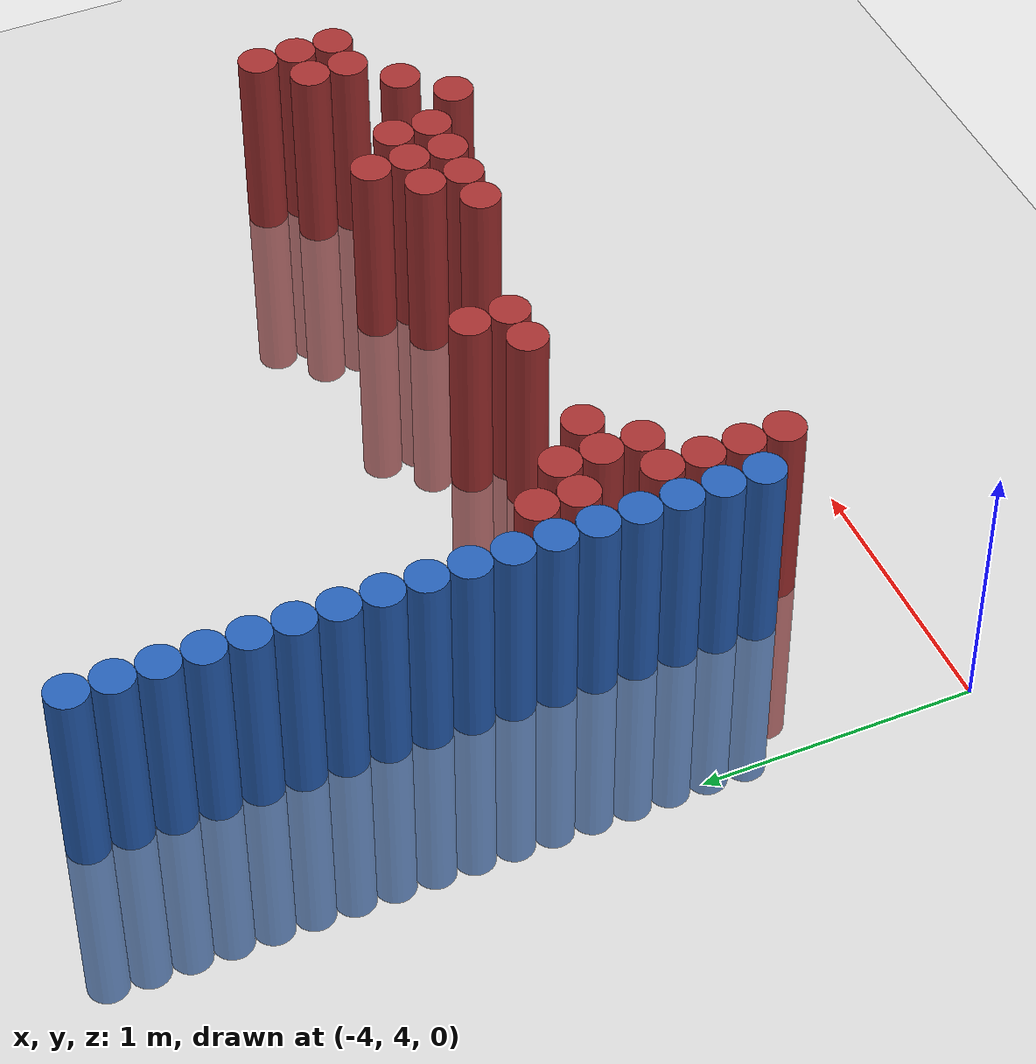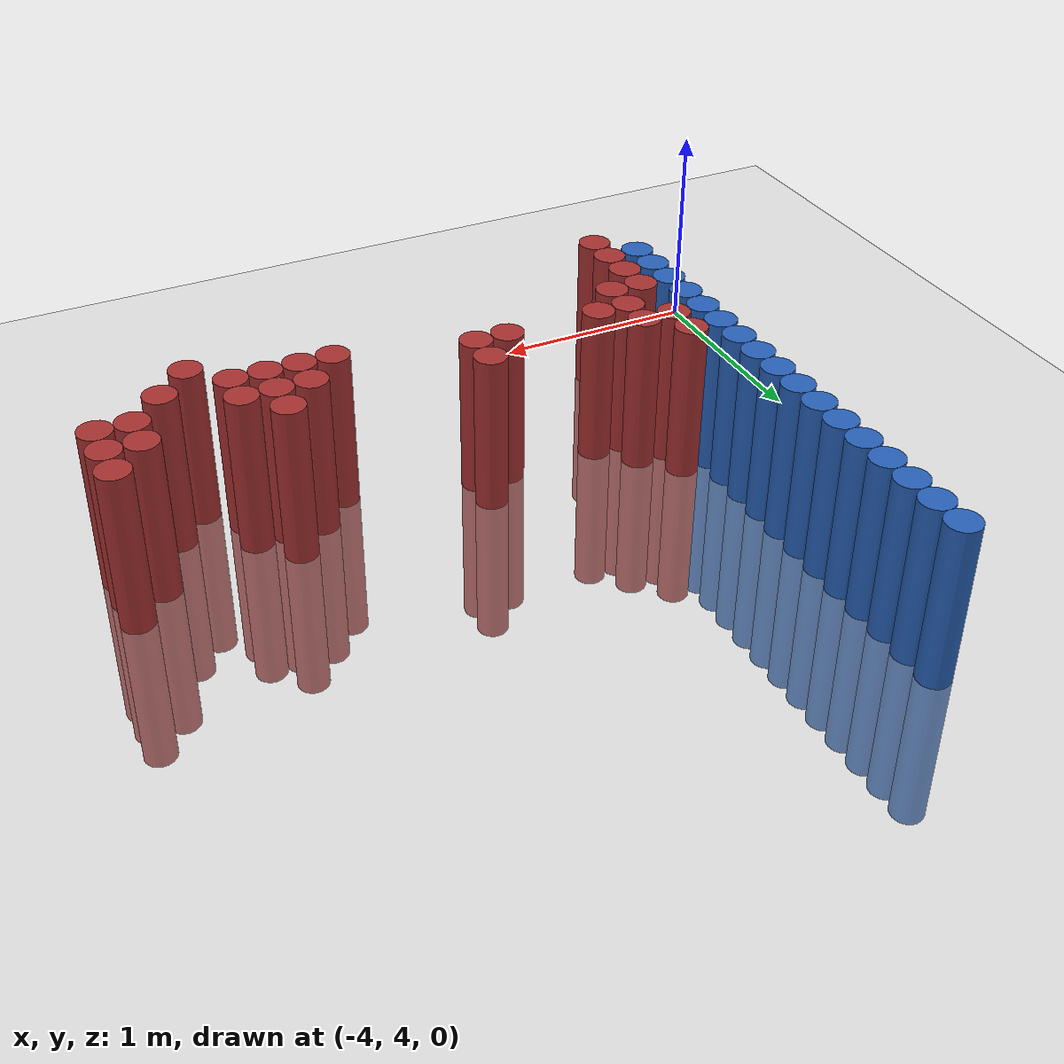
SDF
<sdf version="1.6">
 <world name="default">
  <model name="ground_plane">
   <static>1</static>
   <link name="link">
    <collision name="collision">
     <geometry><plane><normal>0 0 1</normal><size>100 100</size></plane></geometry>
     <surface><friction><ode><mu>100</mu><mu2>50</mu2></ode></friction></surface>
    </collision>
    <visual name="visual">
     <cast_shadows>0</cast_shadows>
     <geometry><plane><normal>0 0 1</normal><size>100 100</size></plane></geometry>
     <material>
      <script><uri>file://media/materials/scripts/gazebo.material</uri><name>Gazebo/Grey</name></script>
     </material>
    </visual>
   </link>
  </model>
  <model name="unit_cylinder_175">
   <static>1</static>
   <pose>-3.425000 4.525000 0.000000 0.000000 0.000000 0.000000</pose>
   <link name="link">
    <inertial>
     <mass>1</mass>
     <inertia><ixx>0.145833</ixx><ixy>0</ixy><ixz>0</ixz><iyy>0.145833</iyy><iyz>0</iyz><izz>0.125</izz></inertia>
    </inertial>
    <collision name="collision">
     <geometry><cylinder><radius>0.075000</radius><length>1.5</length></cylinder></geometry>
    </collision>
    <visual name="visual">
     <geometry><cylinder><radius>0.075000</radius><length>1.5</length></cylinder></geometry>
     <material>
      <ambient>0.152000 0.379000 0.720000 1</ambient>
      <diffuse>0.152000 0.379000 0.720000 1</diffuse>
     </material>
     <material>
      <script><name>Gazebo/Grey</name><uri>file://media/materials/scripts/gazebo.material</uri></script>
     </material>
    </visual>
   </link>
  </model>
  <model name="unit_cylinder_177">
   <static>1</static>
   <pose>-3.425000 4.675000 0.000000 0.000000 0.000000 0.000000</pose>
   <link name="link">
    <inertial>
     <mass>1</mass>
     <inertia><ixx>0.145833</ixx><ixy>0</ixy><ixz>0</ixz><iyy>0.145833</iyy><iyz>0</iyz><izz>0.125</izz></inertia>
    </inertial>
    <collision name="collision">
     <geometry><cylinder><radius>0.075000</radius><length>1.5</length></cylinder></geometry>
    </collision>
    <visual name="visual">
     <geometry><cylinder><radius>0.075000</radius><length>1.5</length></cylinder></geometry>
     <material>
      <ambient>0.152000 0.379000 0.720000 1</ambient>
      <diffuse>0.152000 0.379000 0.720000 1</diffuse>
     </material>
     <material>
      <script><name>Gazebo/Grey</name><uri>file://media/materials/scripts/gazebo.material</uri></script>
     </material>
    </visual>
   </link>
  </model>
  <model name="unit_cylinder_179">
   <static>1</static>
   <pose>-3.425000 4.825000 0.000000 0.000000 0.000000 0.000000</pose>
   <link name="link">
    <inertial>
     <mass>1</mass>
     <inertia><ixx>0.145833</ixx><ixy>0</ixy><ixz>0</ixz><iyy>0.145833</iyy><iyz>0</iyz><izz>0.125</izz></inertia>
    </inertial>
    <collision name="collision">
     <geometry><cylinder><radius>0.075000</radius><length>1.5</length></cylinder></geometry>
    </collision>
    <visual name="visual">
     <geometry><cylinder><radius>0.075000</radius><length>1.5</length></cylinder></geometry>
     <material>
      <ambient>0.152000 0.379000 0.720000 1</ambient>
      <diffuse>0.152000 0.379000 0.720000 1</diffuse>
     </material>
     <material>
      <script><name>Gazebo/Grey</name><uri>file://media/materials/scripts/gazebo.material</uri></script>
     </material>
    </visual>
   </link>
  </model>
  <model name="unit_cylinder_181">
   <static>1</static>
   <pose>-3.425000 4.975000 0.000000 0.000000 0.000000 0.000000</pose>
   <link name="link">
    <inertial>
     <mass>1</mass>
     <inertia><ixx>0.145833</ixx><ixy>0</ixy><ixz>0</ixz><iyy>0.145833</iyy><iyz>0</iyz><izz>0.125</izz></inertia>
    </inertial>
    <collision name="collision">
     <geometry><cylinder><radius>0.075000</radius><length>1.5</length></cylinder></geometry>
    </collision>
    <visual name="visual">
     <geometry><cylinder><radius>0.075000</radius><length>1.5</length></cylinder></geometry>
     <material>
      <ambient>0.152000 0.379000 0.720000 1</ambient>
      <diffuse>0.152000 0.379000 0.720000 1</diffuse>
     </material>
     <material>
      <script><name>Gazebo/Grey</name><uri>file://media/materials/scripts/gazebo.material</uri></script>
     </material>
    </visual>
   </link>
  </model>
  <model name="unit_cylinder_183">
   <static>1</static>
   <pose>-3.425000 5.125000 0.000000 0.000000 0.000000 0.000000</pose>
   <link name="link">
    <inertial>
     <mass>1</mass>
     <inertia><ixx>0.145833</ixx><ixy>0</ixy><ixz>0</ixz><iyy>0.145833</iyy><iyz>0</iyz><izz>0.125</izz></inertia>
    </inertial>
    <collision name="collision">
     <geometry><cylinder><radius>0.075000</radius><length>1.5</length></cylinder></geometry>
    </collision>
    <visual name="visual">
     <geometry><cylinder><radius>0.075000</radius><length>1.5</length></cylinder></geometry>
     <material>
      <ambient>0.152000 0.379000 0.720000 1</ambient>
      <diffuse>0.152000 0.379000 0.720000 1</diffuse>
     </material>
     <material>
      <script><name>Gazebo/Grey</name><uri>file://media/materials/scripts/gazebo.material</uri></script>
     </material>
    </visual>
   </link>
  </model>
  <model name="unit_cylinder_185">
   <static>1</static>
   <pose>-3.425000 5.275000 0.000000 0.000000 0.000000 0.000000</pose>
   <link name="link">
    <inertial>
     <mass>1</mass>
     <inertia><ixx>0.145833</ixx><ixy>0</ixy><ixz>0</ixz><iyy>0.145833</iyy><iyz>0</iyz><izz>0.125</izz></inertia>
    </inertial>
    <collision name="collision">
     <geometry><cylinder><radius>0.075000</radius><length>1.5</length></cylinder></geometry>
    </collision>
    <visual name="visual">
     <geometry><cylinder><radius>0.075000</radius><length>1.5</length></cylinder></geometry>
     <material>
      <ambient>0.152000 0.379000 0.720000 1</ambient>
      <diffuse>0.152000 0.379000 0.720000 1</diffuse>
     </material>
     <material>
      <script><name>Gazebo/Grey</name><uri>file://media/materials/scripts/gazebo.material</uri></script>
     </material>
    </visual>
   </link>
  </model>
  <model name="unit_cylinder_187">
   <static>1</static>
   <pose>-3.425000 5.425000 0.000000 0.000000 0.000000 0.000000</pose>
   <link name="link">
    <inertial>
     <mass>1</mass>
     <inertia><ixx>0.145833</ixx><ixy>0</ixy><ixz>0</ixz><iyy>0.145833</iyy><iyz>0</iyz><izz>0.125</izz></inertia>
    </inertial>
    <collision name="collision">
     <geometry><cylinder><radius>0.075000</radius><length>1.5</length></cylinder></geometry>
    </collision>
    <visual name="visual">
     <geometry><cylinder><radius>0.075000</radius><length>1.5</length></cylinder></geometry>
     <material>
      <ambient>0.152000 0.379000 0.720000 1</ambient>
      <diffuse>0.152000 0.379000 0.720000 1</diffuse>
     </material>
     <material>
      <script><name>Gazebo/Grey</name><uri>file://media/materials/scripts/gazebo.material</uri></script>
     </material>
    </visual>
   </link>
  </model>
  <model name="unit_cylinder_189">
   <static>1</static>
   <pose>-3.425000 5.575000 0.000000 0.000000 0.000000 0.000000</pose>
   <link name="link">
    <inertial>
     <mass>1</mass>
     <inertia><ixx>0.145833</ixx><ixy>0</ixy><ixz>0</ixz><iyy>0.145833</iyy><iyz>0</iyz><izz>0.125</izz></inertia>
    </inertial>
    <collision name="collision">
     <geometry><cylinder><radius>0.075000</radius><length>1.5</length></cylinder></geometry>
    </collision>
    <visual name="visual">
     <geometry><cylinder><radius>0.075000</radius><length>1.5</length></cylinder></geometry>
     <material>
      <ambient>0.152000 0.379000 0.720000 1</ambient>
      <diffuse>0.152000 0.379000 0.720000 1</diffuse>
     </material>
     <material>
      <script><name>Gazebo/Grey</name><uri>file://media/materials/scripts/gazebo.material</uri></script>
     </material>
    </visual>
   </link>
  </model>
  <model name="unit_cylinder_191">
   <static>1</static>
   <pose>-3.425000 5.725000 0.000000 0.000000 0.000000 0.000000</pose>
   <link name="link">
    <inertial>
     <mass>1</mass>
     <inertia><ixx>0.145833</ixx><ixy>0</ixy><ixz>0</ixz><iyy>0.145833</iyy><iyz>0</iyz><izz>0.125</izz></inertia>
    </inertial>
    <collision name="collision">
     <geometry><cylinder><radius>0.075000</radius><length>1.5</length></cylinder></geometry>
    </collision>
    <visual name="visual">
     <geometry><cylinder><radius>0.075000</radius><length>1.5</length></cylinder></geometry>
     <material>
      <ambient>0.152000 0.379000 0.720000 1</ambient>
      <diffuse>0.152000 0.379000 0.720000 1</diffuse>
     </material>
     <material>
      <script><name>Gazebo/Grey</name><uri>file://media/materials/scripts/gazebo.material</uri></script>
     </material>
    </visual>
   </link>
  </model>
  <model name="unit_cylinder_193">
   <static>1</static>
   <pose>-3.425000 5.875000 0.000000 0.000000 0.000000 0.000000</pose>
   <link name="link">
    <inertial>
     <mass>1</mass>
     <inertia><ixx>0.145833</ixx><ixy>0</ixy><ixz>0</ixz><iyy>0.145833</iyy><iyz>0</iyz><izz>0.125</izz></inertia>
    </inertial>
    <collision name="collision">
     <geometry><cylinder><radius>0.075000</radius><length>1.5</length></cylinder></geometry>
    </collision>
    <visual name="visual">
     <geometry><cylinder><radius>0.075000</radius><length>1.5</length></cylinder></geometry>
     <material>
      <ambient>0.152000 0.379000 0.720000 1</ambient>
      <diffuse>0.152000 0.379000 0.720000 1</diffuse>
     </material>
     <material>
      <script><name>Gazebo/Grey</name><uri>file://media/materials/scripts/gazebo.material</uri></script>
     </material>
    </visual>
   </link>
  </model>
  <model name="unit_cylinder_195">
   <static>1</static>
   <pose>-3.425000 6.025000 0.000000 0.000000 0.000000 0.000000</pose>
   <link name="link">
    <inertial>
     <mass>1</mass>
     <inertia><ixx>0.145833</ixx><ixy>0</ixy><ixz>0</ixz><iyy>0.145833</iyy><iyz>0</iyz><izz>0.125</izz></inertia>
    </inertial>
    <collision name="collision">
     <geometry><cylinder><radius>0.075000</radius><length>1.5</length></cylinder></geometry>
    </collision>
    <visual name="visual">
     <geometry><cylinder><radius>0.075000</radius><length>1.5</length></cylinder></geometry>
     <material>
      <ambient>0.152000 0.379000 0.720000 1</ambient>
      <diffuse>0.152000 0.379000 0.720000 1</diffuse>
     </material>
     <material>
      <script><name>Gazebo/Grey</name><uri>file://media/materials/scripts/gazebo.material</uri></script>
     </material>
    </visual>
   </link>
  </model>
  <model name="unit_cylinder_197">
   <static>1</static>
   <pose>-3.425000 6.175000 0.000000 0.000000 0.000000 0.000000</pose>
   <link name="link">
    <inertial>
     <mass>1</mass>
     <inertia><ixx>0.145833</ixx><ixy>0</ixy><ixz>0</ixz><iyy>0.145833</iyy><iyz>0</iyz><izz>0.125</izz></inertia>
    </inertial>
    <collision name="collision">
     <geometry><cylinder><radius>0.075000</radius><length>1.5</length></cylinder></geometry>
    </collision>
    <visual name="visual">
     <geometry><cylinder><radius>0.075000</radius><length>1.5</length></cylinder></geometry>
     <material>
      <ambient>0.152000 0.379000 0.720000 1</ambient>
      <diffuse>0.152000 0.379000 0.720000 1</diffuse>
     </material>
     <material>
      <script><name>Gazebo/Grey</name><uri>file://media/materials/scripts/gazebo.material</uri></script>
     </material>
    </visual>
   </link>
  </model>
  <model name="unit_cylinder_199">
   <static>1</static>
   <pose>-3.425000 6.325000 0.000000 0.000000 0.000000 0.000000</pose>
   <link name="link">
    <inertial>
     <mass>1</mass>
     <inertia><ixx>0.145833</ixx><ixy>0</ixy><ixz>0</ixz><iyy>0.145833</iyy><iyz>0</iyz><izz>0.125</izz></inertia>
    </inertial>
    <collision name="collision">
     <geometry><cylinder><radius>0.075000</radius><length>1.5</length></cylinder></geometry>
    </collision>
    <visual name="visual">
     <geometry><cylinder><radius>0.075000</radius><length>1.5</length></cylinder></geometry>
     <material>
      <ambient>0.152000 0.379000 0.720000 1</ambient>
      <diffuse>0.152000 0.379000 0.720000 1</diffuse>
     </material>
     <material>
      <script><name>Gazebo/Grey</name><uri>file://media/materials/scripts/gazebo.material</uri></script>
     </material>
    </visual>
   </link>
  </model>
  <model name="unit_cylinder_201">
   <static>1</static>
   <pose>-3.425000 6.475000 0.000000 0.000000 0.000000 0.000000</pose>
   <link name="link">
    <inertial>
     <mass>1</mass>
     <inertia><ixx>0.145833</ixx><ixy>0</ixy><ixz>0</ixz><iyy>0.145833</iyy><iyz>0</iyz><izz>0.125</izz></inertia>
    </inertial>
    <collision name="collision">
     <geometry><cylinder><radius>0.075000</radius><length>1.5</length></cylinder></geometry>
    </collision>
    <visual name="visual">
     <geometry><cylinder><radius>0.075000</radius><length>1.5</length></cylinder></geometry>
     <material>
      <ambient>0.152000 0.379000 0.720000 1</ambient>
      <diffuse>0.152000 0.379000 0.720000 1</diffuse>
     </material>
     <material>
      <script><name>Gazebo/Grey</name><uri>file://media/materials/scripts/gazebo.material</uri></script>
     </material>
    </visual>
   </link>
  </model>
  <model name="unit_cylinder_203">
   <static>1</static>
   <pose>-3.425000 6.625000 0.000000 0.000000 0.000000 0.000000</pose>
   <link name="link">
    <inertial>
     <mass>1</mass>
     <inertia><ixx>0.145833</ixx><ixy>0</ixy><ixz>0</ixz><iyy>0.145833</iyy><iyz>0</iyz><izz>0.125</izz></inertia>
    </inertial>
    <collision name="collision">
     <geometry><cylinder><radius>0.075000</radius><length>1.5</length></cylinder></geometry>
    </collision>
    <visual name="visual">
     <geometry><cylinder><radius>0.075000</radius><length>1.5</length></cylinder></geometry>
     <material>
      <ambient>0.152000 0.379000 0.720000 1</ambient>
      <diffuse>0.152000 0.379000 0.720000 1</diffuse>
     </material>
     <material>
      <script><name>Gazebo/Grey</name><uri>file://media/materials/scripts/gazebo.material</uri></script>
     </material>
    </visual>
   </link>
  </model>
  <model name="unit_cylinder_205">
   <static>1</static>
   <pose>-3.425000 6.775000 0.000000 0.000000 0.000000 0.000000</pose>
   <link name="link">
    <inertial>
     <mass>1</mass>
     <inertia><ixx>0.145833</ixx><ixy>0</ixy><ixz>0</ixz><iyy>0.145833</iyy><iyz>0</iyz><izz>0.125</izz></inertia>
    </inertial>
    <collision name="collision">
     <geometry><cylinder><radius>0.075000</radius><length>1.5</length></cylinder></geometry>
    </collision>
    <visual name="visual">
     <geometry><cylinder><radius>0.075000</radius><length>1.5</length></cylinder></geometry>
     <material>
      <ambient>0.152000 0.379000 0.720000 1</ambient>
      <diffuse>0.152000 0.379000 0.720000 1</diffuse>
     </material>
     <material>
      <script><name>Gazebo/Grey</name><uri>file://media/materials/scripts/gazebo.material</uri></script>
     </material>
    </visual>
   </link>
  </model>
  <model name="unit_cylinder_207">
   <static>1</static>
   <pose>-3.425000 6.925000 0.000000 0.000000 0.000000 0.000000</pose>
   <link name="link">
    <inertial>
     <mass>1</mass>
     <inertia><ixx>0.145833</ixx><ixy>0</ixy><ixz>0</ixz><iyy>0.145833</iyy><iyz>0</iyz><izz>0.125</izz></inertia>
    </inertial>
    <collision name="collision">
     <geometry><cylinder><radius>0.075000</radius><length>1.5</length></cylinder></geometry>
    </collision>
    <visual name="visual">
     <geometry><cylinder><radius>0.075000</radius><length>1.5</length></cylinder></geometry>
     <material>
      <ambient>0.152000 0.379000 0.720000 1</ambient>
      <diffuse>0.152000 0.379000 0.720000 1</diffuse>
     </material>
     <material>
      <script><name>Gazebo/Grey</name><uri>file://media/materials/scripts/gazebo.material</uri></script>
     </material>
    </visual>
   </link>
  </model>
  <model name="unit_cylinder_251">
   <static>1</static>
   <pose>-3.425000 4.525000 0.000000 0.000000 0.000000 0.000000</pose>
   <link name="link">
    <inertial>
     <mass>1</mass>
     <inertia><ixx>0.145833</ixx><ixy>0</ixy><ixz>0</ixz><iyy>0.145833</iyy><iyz>0</iyz><izz>0.125</izz></inertia>
    </inertial>
    <collision name="collision">
     <geometry><cylinder><radius>0.075000</radius><length>1.5</length></cylinder></geometry>
    </collision>
    <visual name="visual">
     <geometry><cylinder><radius>0.075000</radius><length>1.5</length></cylinder></geometry>
     <material>
      <ambient>0.152000 0.379000 0.720000 1</ambient>
      <diffuse>0.152000 0.379000 0.720000 1</diffuse>
     </material>
     <material>
      <script><name>Gazebo/Grey</name><uri>file://media/materials/scripts/gazebo.material</uri></script>
     </material>
    </visual>
   </link>
  </model>
  <model name="unit_cylinder_252">
   <static>1</static>
   <pose>-3.425000 4.675000 0.000000 0.000000 0.000000 0.000000</pose>
   <link name="link">
    <inertial>
     <mass>1</mass>
     <inertia><ixx>0.145833</ixx><ixy>0</ixy><ixz>0</ixz><iyy>0.145833</iyy><iyz>0</iyz><izz>0.125</izz></inertia>
    </inertial>
    <collision name="collision">
     <geometry><cylinder><radius>0.075000</radius><length>1.5</length></cylinder></geometry>
    </collision>
    <visual name="visual">
     <geometry><cylinder><radius>0.075000</radius><length>1.5</length></cylinder></geometry>
     <material>
      <ambient>0.152000 0.379000 0.720000 1</ambient>
      <diffuse>0.152000 0.379000 0.720000 1</diffuse>
     </material>
     <material>
      <script><name>Gazebo/Grey</name><uri>file://media/materials/scripts/gazebo.material</uri></script>
     </material>
    </visual>
   </link>
  </model>
  <model name="unit_cylinder_253">
   <static>1</static>
   <pose>-3.425000 4.825000 0.000000 0.000000 0.000000 0.000000</pose>
   <link name="link">
    <inertial>
     <mass>1</mass>
     <inertia><ixx>0.145833</ixx><ixy>0</ixy><ixz>0</ixz><iyy>0.145833</iyy><iyz>0</iyz><izz>0.125</izz></inertia>
    </inertial>
    <collision name="collision">
     <geometry><cylinder><radius>0.075000</radius><length>1.5</length></cylinder></geometry>
    </collision>
    <visual name="visual">
     <geometry><cylinder><radius>0.075000</radius><length>1.5</length></cylinder></geometry>
     <material>
      <ambient>0.152000 0.379000 0.720000 1</ambient>
      <diffuse>0.152000 0.379000 0.720000 1</diffuse>
     </material>
     <material>
      <script><name>Gazebo/Grey</name><uri>file://media/materials/scripts/gazebo.material</uri></script>
     </material>
    </visual>
   </link>
  </model>
  <model name="unit_cylinder_254">
   <static>1</static>
   <pose>-3.425000 4.975000 0.000000 0.000000 0.000000 0.000000</pose>
   <link name="link">
    <inertial>
     <mass>1</mass>
     <inertia><ixx>0.145833</ixx><ixy>0</ixy><ixz>0</ixz><iyy>0.145833</iyy><iyz>0</iyz><izz>0.125</izz></inertia>
    </inertial>
    <collision name="collision">
     <geometry><cylinder><radius>0.075000</radius><length>1.5</length></cylinder></geometry>
    </collision>
    <visual name="visual">
     <geometry><cylinder><radius>0.075000</radius><length>1.5</length></cylinder></geometry>
     <material>
      <ambient>0.152000 0.379000 0.720000 1</ambient>
      <diffuse>0.152000 0.379000 0.720000 1</diffuse>
     </material>
     <material>
      <script><name>Gazebo/Grey</name><uri>file://media/materials/scripts/gazebo.material</uri></script>
     </material>
    </visual>
   </link>
  </model>
  <model name="unit_cylinder_255">
   <static>1</static>
   <pose>-3.425000 5.125000 0.000000 0.000000 0.000000 0.000000</pose>
   <link name="link">
    <inertial>
     <mass>1</mass>
     <inertia><ixx>0.145833</ixx><ixy>0</ixy><ixz>0</ixz><iyy>0.145833</iyy><iyz>0</iyz><izz>0.125</izz></inertia>
    </inertial>
    <collision name="collision">
     <geometry><cylinder><radius>0.075000</radius><length>1.5</length></cylinder></geometry>
    </collision>
    <visual name="visual">
     <geometry><cylinder><radius>0.075000</radius><length>1.5</length></cylinder></geometry>
     <material>
      <ambient>0.152000 0.379000 0.720000 1</ambient>
      <diffuse>0.152000 0.379000 0.720000 1</diffuse>
     </material>
     <material>
      <script><name>Gazebo/Grey</name><uri>file://media/materials/scripts/gazebo.material</uri></script>
     </material>
    </visual>
   </link>
  </model>
  <model name="unit_cylinder_256">
   <static>1</static>
   <pose>-3.425000 5.275000 0.000000 0.000000 0.000000 0.000000</pose>
   <link name="link">
    <inertial>
     <mass>1</mass>
     <inertia><ixx>0.145833</ixx><ixy>0</ixy><ixz>0</ixz><iyy>0.145833</iyy><iyz>0</iyz><izz>0.125</izz></inertia>
    </inertial>
    <collision name="collision">
     <geometry><cylinder><radius>0.075000</radius><length>1.5</length></cylinder></geometry>
    </collision>
    <visual name="visual">
     <geometry><cylinder><radius>0.075000</radius><length>1.5</length></cylinder></geometry>
     <material>
      <ambient>0.152000 0.379000 0.720000 1</ambient>
      <diffuse>0.152000 0.379000 0.720000 1</diffuse>
     </material>
     <material>
      <script><name>Gazebo/Grey</name><uri>file://media/materials/scripts/gazebo.material</uri></script>
     </material>
    </visual>
   </link>
  </model>
  <model name="unit_cylinder_257">
   <static>1</static>
   <pose>-3.425000 5.425000 0.000000 0.000000 0.000000 0.000000</pose>
   <link name="link">
    <inertial>
     <mass>1</mass>
     <inertia><ixx>0.145833</ixx><ixy>0</ixy><ixz>0</ixz><iyy>0.145833</iyy><iyz>0</iyz><izz>0.125</izz></inertia>
    </inertial>
    <collision name="collision">
     <geometry><cylinder><radius>0.075000</radius><length>1.5</length></cylinder></geometry>
    </collision>
    <visual name="visual">
     <geometry><cylinder><radius>0.075000</radius><length>1.5</length></cylinder></geometry>
     <material>
      <ambient>0.152000 0.379000 0.720000 1</ambient>
      <diffuse>0.152000 0.379000 0.720000 1</diffuse>
     </material>
     <material>
      <script><name>Gazebo/Grey</name><uri>file://media/materials/scripts/gazebo.material</uri></script>
     </material>
    </visual>
   </link>
  </model>
  <model name="unit_cylinder_280">
   <static>1</static>
   <pose>-3.275000 4.375000 0.000000 0.000000 0.000000 0.000000</pose>
   <link name="link">
    <inertial>
     <mass>1</mass>
     <inertia><ixx>0.145833</ixx><ixy>0</ixy><ixz>0</ixz><iyy>0.145833</iyy><iyz>0</iyz><izz>0.125</izz></inertia>
    </inertial>
    <collision name="collision">
     <geometry><cylinder><radius>0.075000</radius><length>1.5</length></cylinder></geometry>
    </collision>
    <visual name="visual">
     <geometry><cylinder><radius>0.075000</radius><length>1.5</length></cylinder></geometry>
     <material>
      <ambient>0.648000 0.192000 0.192000 1</ambient>
      <diffuse>0.648000 0.192000 0.192000 1</diffuse>
     </material>
     <material>
      <script><name>Gazebo/Grey</name><uri>file://media/materials/scripts/gazebo.material</uri></script>
     </material>
    </visual>
   </link>
  </model>
  <model name="unit_cylinder_281">
   <static>1</static>
   <pose>-3.275000 4.525000 0.000000 0.000000 0.000000 0.000000</pose>
   <link name="link">
    <inertial>
     <mass>1</mass>
     <inertia><ixx>0.145833</ixx><ixy>0</ixy><ixz>0</ixz><iyy>0.145833</iyy><iyz>0</iyz><izz>0.125</izz></inertia>
    </inertial>
    <collision name="collision">
     <geometry><cylinder><radius>0.075000</radius><length>1.5</length></cylinder></geometry>
    </collision>
    <visual name="visual">
     <geometry><cylinder><radius>0.075000</radius><length>1.5</length></cylinder></geometry>
     <material>
      <ambient>0.648000 0.192000 0.192000 1</ambient>
      <diffuse>0.648000 0.192000 0.192000 1</diffuse>
     </material>
     <material>
      <script><name>Gazebo/Grey</name><uri>file://media/materials/scripts/gazebo.material</uri></script>
     </material>
    </visual>
   </link>
  </model>
  <model name="unit_cylinder_282">
   <static>1</static>
   <pose>-3.275000 4.675000 0.000000 0.000000 0.000000 0.000000</pose>
   <link name="link">
    <inertial>
     <mass>1</mass>
     <inertia><ixx>0.145833</ixx><ixy>0</ixy><ixz>0</ixz><iyy>0.145833</iyy><iyz>0</iyz><izz>0.125</izz></inertia>
    </inertial>
    <collision name="collision">
     <geometry><cylinder><radius>0.075000</radius><length>1.5</length></cylinder></geometry>
    </collision>
    <visual name="visual">
     <geometry><cylinder><radius>0.075000</radius><length>1.5</length></cylinder></geometry>
     <material>
      <ambient>0.648000 0.192000 0.192000 1</ambient>
      <diffuse>0.648000 0.192000 0.192000 1</diffuse>
     </material>
     <material>
      <script><name>Gazebo/Grey</name><uri>file://media/materials/scripts/gazebo.material</uri></script>
     </material>
    </visual>
   </link>
  </model>
  <model name="unit_cylinder_283">
   <static>1</static>
   <pose>-3.275000 4.825000 0.000000 0.000000 0.000000 0.000000</pose>
   <link name="link">
    <inertial>
     <mass>1</mass>
     <inertia><ixx>0.145833</ixx><ixy>0</ixy><ixz>0</ixz><iyy>0.145833</iyy><iyz>0</iyz><izz>0.125</izz></inertia>
    </inertial>
    <collision name="collision">
     <geometry><cylinder><radius>0.075000</radius><length>1.5</length></cylinder></geometry>
    </collision>
    <visual name="visual">
     <geometry><cylinder><radius>0.075000</radius><length>1.5</length></cylinder></geometry>
     <material>
      <ambient>0.648000 0.192000 0.192000 1</ambient>
      <diffuse>0.648000 0.192000 0.192000 1</diffuse>
     </material>
     <material>
      <script><name>Gazebo/Grey</name><uri>file://media/materials/scripts/gazebo.material</uri></script>
     </material>
    </visual>
   </link>
  </model>
  <model name="unit_cylinder_284">
   <static>1</static>
   <pose>-3.275000 5.125000 0.000000 0.000000 0.000000 0.000000</pose>
   <link name="link">
    <inertial>
     <mass>1</mass>
     <inertia><ixx>0.145833</ixx><ixy>0</ixy><ixz>0</ixz><iyy>0.145833</iyy><iyz>0</iyz><izz>0.125</izz></inertia>
    </inertial>
    <collision name="collision">
     <geometry><cylinder><radius>0.075000</radius><length>1.5</length></cylinder></geometry>
    </collision>
    <visual name="visual">
     <geometry><cylinder><radius>0.075000</radius><length>1.5</length></cylinder></geometry>
     <material>
      <ambient>0.648000 0.192000 0.192000 1</ambient>
      <diffuse>0.648000 0.192000 0.192000 1</diffuse>
     </material>
     <material>
      <script><name>Gazebo/Grey</name><uri>file://media/materials/scripts/gazebo.material</uri></script>
     </material>
    </visual>
   </link>
  </model>
  <model name="unit_cylinder_285">
   <static>1</static>
   <pose>-3.275000 5.275000 0.000000 0.000000 0.000000 0.000000</pose>
   <link name="link">
    <inertial>
     <mass>1</mass>
     <inertia><ixx>0.145833</ixx><ixy>0</ixy><ixz>0</ixz><iyy>0.145833</iyy><iyz>0</iyz><izz>0.125</izz></inertia>
    </inertial>
    <collision name="collision">
     <geometry><cylinder><radius>0.075000</radius><length>1.5</length></cylinder></geometry>
    </collision>
    <visual name="visual">
     <geometry><cylinder><radius>0.075000</radius><length>1.5</length></cylinder></geometry>
     <material>
      <ambient>0.648000 0.192000 0.192000 1</ambient>
      <diffuse>0.648000 0.192000 0.192000 1</diffuse>
     </material>
     <material>
      <script><name>Gazebo/Grey</name><uri>file://media/materials/scripts/gazebo.material</uri></script>
     </material>
    </visual>
   </link>
  </model>
  <model name="unit_cylinder_298">
   <static>1</static>
   <pose>-3.125000 4.825000 0.000000 0.000000 0.000000 0.000000</pose>
   <link name="link">
    <inertial>
     <mass>1</mass>
     <inertia><ixx>0.145833</ixx><ixy>0</ixy><ixz>0</ixz><iyy>0.145833</iyy><iyz>0</iyz><izz>0.125</izz></inertia>
    </inertial>
    <collision name="collision">
     <geometry><cylinder><radius>0.075000</radius><length>1.5</length></cylinder></geometry>
    </collision>
    <visual name="visual">
     <geometry><cylinder><radius>0.075000</radius><length>1.5</length></cylinder></geometry>
     <material>
      <ambient>0.648000 0.192000 0.192000 1</ambient>
      <diffuse>0.648000 0.192000 0.192000 1</diffuse>
     </material>
     <material>
      <script><name>Gazebo/Grey</name><uri>file://media/materials/scripts/gazebo.material</uri></script>
     </material>
    </visual>
   </link>
  </model>
  <model name="unit_cylinder_299">
   <static>1</static>
   <pose>-3.125000 4.975000 0.000000 0.000000 0.000000 0.000000</pose>
   <link name="link">
    <inertial>
     <mass>1</mass>
     <inertia><ixx>0.145833</ixx><ixy>0</ixy><ixz>0</ixz><iyy>0.145833</iyy><iyz>0</iyz><izz>0.125</izz></inertia>
    </inertial>
    <collision name="collision">
     <geometry><cylinder><radius>0.075000</radius><length>1.5</length></cylinder></geometry>
    </collision>
    <visual name="visual">
     <geometry><cylinder><radius>0.075000</radius><length>1.5</length></cylinder></geometry>
     <material>
      <ambient>0.648000 0.192000 0.192000 1</ambient>
      <diffuse>0.648000 0.192000 0.192000 1</diffuse>
     </material>
     <material>
      <script><name>Gazebo/Grey</name><uri>file://media/materials/scripts/gazebo.material</uri></script>
     </material>
    </visual>
   </link>
  </model>
  <model name="unit_cylinder_300">
   <static>1</static>
   <pose>-3.125000 5.125000 0.000000 0.000000 0.000000 0.000000</pose>
   <link name="link">
    <inertial>
     <mass>1</mass>
     <inertia><ixx>0.145833</ixx><ixy>0</ixy><ixz>0</ixz><iyy>0.145833</iyy><iyz>0</iyz><izz>0.125</izz></inertia>
    </inertial>
    <collision name="collision">
     <geometry><cylinder><radius>0.075000</radius><length>1.5</length></cylinder></geometry>
    </collision>
    <visual name="visual">
     <geometry><cylinder><radius>0.075000</radius><length>1.5</length></cylinder></geometry>
     <material>
      <ambient>0.648000 0.192000 0.192000 1</ambient>
      <diffuse>0.648000 0.192000 0.192000 1</diffuse>
     </material>
     <material>
      <script><name>Gazebo/Grey</name><uri>file://media/materials/scripts/gazebo.material</uri></script>
     </material>
    </visual>
   </link>
  </model>
  <model name="unit_cylinder_311">
   <static>1</static>
   <pose>-2.975000 4.975000 0.000000 0.000000 0.000000 0.000000</pose>
   <link name="link">
    <inertial>
     <mass>1</mass>
     <inertia><ixx>0.145833</ixx><ixy>0</ixy><ixz>0</ixz><iyy>0.145833</iyy><iyz>0</iyz><izz>0.125</izz></inertia>
    </inertial>
    <collision name="collision">
     <geometry><cylinder><radius>0.075000</radius><length>1.5</length></cylinder></geometry>
    </collision>
    <visual name="visual">
     <geometry><cylinder><radius>0.075000</radius><length>1.5</length></cylinder></geometry>
     <material>
      <ambient>0.648000 0.192000 0.192000 1</ambient>
      <diffuse>0.648000 0.192000 0.192000 1</diffuse>
     </material>
     <material>
      <script><name>Gazebo/Grey</name><uri>file://media/materials/scripts/gazebo.material</uri></script>
     </material>
    </visual>
   </link>
  </model>
  <model name="unit_cylinder_331">
   <static>1</static>
   <pose>-2.525000 4.975000 0.000000 0.000000 0.000000 0.000000</pose>
   <link name="link">
    <inertial>
     <mass>1</mass>
     <inertia><ixx>0.145833</ixx><ixy>0</ixy><ixz>0</ixz><iyy>0.145833</iyy><iyz>0</iyz><izz>0.125</izz></inertia>
    </inertial>
    <collision name="collision">
     <geometry><cylinder><radius>0.075000</radius><length>1.5</length></cylinder></geometry>
    </collision>
    <visual name="visual">
     <geometry><cylinder><radius>0.075000</radius><length>1.5</length></cylinder></geometry>
     <material>
      <ambient>0.648000 0.192000 0.192000 1</ambient>
      <diffuse>0.648000 0.192000 0.192000 1</diffuse>
     </material>
     <material>
      <script><name>Gazebo/Grey</name><uri>file://media/materials/scripts/gazebo.material</uri></script>
     </material>
    </visual>
   </link>
  </model>
  <model name="unit_cylinder_338">
   <static>1</static>
   <pose>-2.375000 4.975000 0.000000 0.000000 0.000000 0.000000</pose>
   <link name="link">
    <inertial>
     <mass>1</mass>
     <inertia><ixx>0.145833</ixx><ixy>0</ixy><ixz>0</ixz><iyy>0.145833</iyy><iyz>0</iyz><izz>0.125</izz></inertia>
    </inertial>
    <collision name="collision">
     <geometry><cylinder><radius>0.075000</radius><length>1.5</length></cylinder></geometry>
    </collision>
    <visual name="visual">
     <geometry><cylinder><radius>0.075000</radius><length>1.5</length></cylinder></geometry>
     <material>
      <ambient>0.648000 0.192000 0.192000 1</ambient>
      <diffuse>0.648000 0.192000 0.192000 1</diffuse>
     </material>
     <material>
      <script><name>Gazebo/Grey</name><uri>file://media/materials/scripts/gazebo.material</uri></script>
     </material>
    </visual>
   </link>
  </model>
  <model name="unit_cylinder_339">
   <static>1</static>
   <pose>-2.375000 5.125000 0.000000 0.000000 0.000000 0.000000</pose>
   <link name="link">
    <inertial>
     <mass>1</mass>
     <inertia><ixx>0.145833</ixx><ixy>0</ixy><ixz>0</ixz><iyy>0.145833</iyy><iyz>0</iyz><izz>0.125</izz></inertia>
    </inertial>
    <collision name="collision">
     <geometry><cylinder><radius>0.075000</radius><length>1.5</length></cylinder></geometry>
    </collision>
    <visual name="visual">
     <geometry><cylinder><radius>0.075000</radius><length>1.5</length></cylinder></geometry>
     <material>
      <ambient>0.648000 0.192000 0.192000 1</ambient>
      <diffuse>0.648000 0.192000 0.192000 1</diffuse>
     </material>
     <material>
      <script><name>Gazebo/Grey</name><uri>file://media/materials/scripts/gazebo.material</uri></script>
     </material>
    </visual>
   </link>
  </model>
  <model name="unit_cylinder_363">
   <static>1</static>
   <pose>-1.775000 4.825000 0.000000 0.000000 0.000000 0.000000</pose>
   <link name="link">
    <inertial>
     <mass>1</mass>
     <inertia><ixx>0.145833</ixx><ixy>0</ixy><ixz>0</ixz><iyy>0.145833</iyy><iyz>0</iyz><izz>0.125</izz></inertia>
    </inertial>
    <collision name="collision">
     <geometry><cylinder><radius>0.075000</radius><length>1.5</length></cylinder></geometry>
    </collision>
    <visual name="visual">
     <geometry><cylinder><radius>0.075000</radius><length>1.5</length></cylinder></geometry>
     <material>
      <ambient>0.648000 0.192000 0.192000 1</ambient>
      <diffuse>0.648000 0.192000 0.192000 1</diffuse>
     </material>
     <material>
      <script><name>Gazebo/Grey</name><uri>file://media/materials/scripts/gazebo.material</uri></script>
     </material>
    </visual>
   </link>
  </model>
  <model name="unit_cylinder_364">
   <static>1</static>
   <pose>-1.625000 4.825000 0.000000 0.000000 0.000000 0.000000</pose>
   <link name="link">
    <inertial>
     <mass>1</mass>
     <inertia><ixx>0.145833</ixx><ixy>0</ixy><ixz>0</ixz><iyy>0.145833</iyy><iyz>0</iyz><izz>0.125</izz></inertia>
    </inertial>
    <collision name="collision">
     <geometry><cylinder><radius>0.075000</radius><length>1.5</length></cylinder></geometry>
    </collision>
    <visual name="visual">
     <geometry><cylinder><radius>0.075000</radius><length>1.5</length></cylinder></geometry>
     <material>
      <ambient>0.648000 0.192000 0.192000 1</ambient>
      <diffuse>0.648000 0.192000 0.192000 1</diffuse>
     </material>
     <material>
      <script><name>Gazebo/Grey</name><uri>file://media/materials/scripts/gazebo.material</uri></script>
     </material>
    </visual>
   </link>
  </model>
  <model name="unit_cylinder_365">
   <static>1</static>
   <pose>-1.625000 4.975000 0.000000 0.000000 0.000000 0.000000</pose>
   <link name="link">
    <inertial>
     <mass>1</mass>
     <inertia><ixx>0.145833</ixx><ixy>0</ixy><ixz>0</ixz><iyy>0.145833</iyy><iyz>0</iyz><izz>0.125</izz></inertia>
    </inertial>
    <collision name="collision">
     <geometry><cylinder><radius>0.075000</radius><length>1.5</length></cylinder></geometry>
    </collision>
    <visual name="visual">
     <geometry><cylinder><radius>0.075000</radius><length>1.5</length></cylinder></geometry>
     <material>
      <ambient>0.648000 0.192000 0.192000 1</ambient>
      <diffuse>0.648000 0.192000 0.192000 1</diffuse>
     </material>
     <material>
      <script><name>Gazebo/Grey</name><uri>file://media/materials/scripts/gazebo.material</uri></script>
     </material>
    </visual>
   </link>
  </model>
  <model name="unit_cylinder_366">
   <static>1</static>
   <pose>-1.475000 4.825000 0.000000 0.000000 0.000000 0.000000</pose>
   <link name="link">
    <inertial>
     <mass>1</mass>
     <inertia><ixx>0.145833</ixx><ixy>0</ixy><ixz>0</ixz><iyy>0.145833</iyy><iyz>0</iyz><izz>0.125</izz></inertia>
    </inertial>
    <collision name="collision">
     <geometry><cylinder><radius>0.075000</radius><length>1.5</length></cylinder></geometry>
    </collision>
    <visual name="visual">
     <geometry><cylinder><radius>0.075000</radius><length>1.5</length></cylinder></geometry>
     <material>
      <ambient>0.648000 0.192000 0.192000 1</ambient>
      <diffuse>0.648000 0.192000 0.192000 1</diffuse>
     </material>
     <material>
      <script><name>Gazebo/Grey</name><uri>file://media/materials/scripts/gazebo.material</uri></script>
     </material>
    </visual>
   </link>
  </model>
  <model name="unit_cylinder_367">
   <static>1</static>
   <pose>-1.475000 4.975000 0.000000 0.000000 0.000000 0.000000</pose>
   <link name="link">
    <inertial>
     <mass>1</mass>
     <inertia><ixx>0.145833</ixx><ixy>0</ixy><ixz>0</ixz><iyy>0.145833</iyy><iyz>0</iyz><izz>0.125</izz></inertia>
    </inertial>
    <collision name="collision">
     <geometry><cylinder><radius>0.075000</radius><length>1.5</length></cylinder></geometry>
    </collision>
    <visual name="visual">
     <geometry><cylinder><radius>0.075000</radius><length>1.5</length></cylinder></geometry>
     <material>
      <ambient>0.648000 0.192000 0.192000 1</ambient>
      <diffuse>0.648000 0.192000 0.192000 1</diffuse>
     </material>
     <material>
      <script><name>Gazebo/Grey</name><uri>file://media/materials/scripts/gazebo.material</uri></script>
     </material>
    </visual>
   </link>
  </model>
  <model name="unit_cylinder_368">
   <static>1</static>
   <pose>-1.475000 5.125000 0.000000 0.000000 0.000000 0.000000</pose>
   <link name="link">
    <inertial>
     <mass>1</mass>
     <inertia><ixx>0.145833</ixx><ixy>0</ixy><ixz>0</ixz><iyy>0.145833</iyy><iyz>0</iyz><izz>0.125</izz></inertia>
    </inertial>
    <collision name="collision">
     <geometry><cylinder><radius>0.075000</radius><length>1.5</length></cylinder></geometry>
    </collision>
    <visual name="visual">
     <geometry><cylinder><radius>0.075000</radius><length>1.5</length></cylinder></geometry>
     <material>
      <ambient>0.648000 0.192000 0.192000 1</ambient>
      <diffuse>0.648000 0.192000 0.192000 1</diffuse>
     </material>
     <material>
      <script><name>Gazebo/Grey</name><uri>file://media/materials/scripts/gazebo.material</uri></script>
     </material>
    </visual>
   </link>
  </model>
  <model name="unit_cylinder_369">
   <static>1</static>
   <pose>-1.325000 4.825000 0.000000 0.000000 0.000000 0.000000</pose>
   <link name="link">
    <inertial>
     <mass>1</mass>
     <inertia><ixx>0.145833</ixx><ixy>0</ixy><ixz>0</ixz><iyy>0.145833</iyy><iyz>0</iyz><izz>0.125</izz></inertia>
    </inertial>
    <collision name="collision">
     <geometry><cylinder><radius>0.075000</radius><length>1.5</length></cylinder></geometry>
    </collision>
    <visual name="visual">
     <geometry><cylinder><radius>0.075000</radius><length>1.5</length></cylinder></geometry>
     <material>
      <ambient>0.648000 0.192000 0.192000 1</ambient>
      <diffuse>0.648000 0.192000 0.192000 1</diffuse>
     </material>
     <material>
      <script><name>Gazebo/Grey</name><uri>file://media/materials/scripts/gazebo.material</uri></script>
     </material>
    </visual>
   </link>
  </model>
  <model name="unit_cylinder_370">
   <static>1</static>
   <pose>-1.325000 4.975000 0.000000 0.000000 0.000000 0.000000</pose>
   <link name="link">
    <inertial>
     <mass>1</mass>
     <inertia><ixx>0.145833</ixx><ixy>0</ixy><ixz>0</ixz><iyy>0.145833</iyy><iyz>0</iyz><izz>0.125</izz></inertia>
    </inertial>
    <collision name="collision">
     <geometry><cylinder><radius>0.075000</radius><length>1.5</length></cylinder></geometry>
    </collision>
    <visual name="visual">
     <geometry><cylinder><radius>0.075000</radius><length>1.5</length></cylinder></geometry>
     <material>
      <ambient>0.648000 0.192000 0.192000 1</ambient>
      <diffuse>0.648000 0.192000 0.192000 1</diffuse>
     </material>
     <material>
      <script><name>Gazebo/Grey</name><uri>file://media/materials/scripts/gazebo.material</uri></script>
     </material>
    </visual>
   </link>
  </model>
  <model name="unit_cylinder_373">
   <static>1</static>
   <pose>-1.175000 4.675000 0.000000 0.000000 0.000000 0.000000</pose>
   <link name="link">
    <inertial>
     <mass>1</mass>
     <inertia><ixx>0.145833</ixx><ixy>0</ixy><ixz>0</ixz><iyy>0.145833</iyy><iyz>0</iyz><izz>0.125</izz></inertia>
    </inertial>
    <collision name="collision">
     <geometry><cylinder><radius>0.075000</radius><length>1.5</length></cylinder></geometry>
    </collision>
    <visual name="visual">
     <geometry><cylinder><radius>0.075000</radius><length>1.5</length></cylinder></geometry>
     <material>
      <ambient>0.648000 0.192000 0.192000 1</ambient>
      <diffuse>0.648000 0.192000 0.192000 1</diffuse>
     </material>
     <material>
      <script><name>Gazebo/Grey</name><uri>file://media/materials/scripts/gazebo.material</uri></script>
     </material>
    </visual>
   </link>
  </model>
  <model name="unit_cylinder_376">
   <static>1</static>
   <pose>-1.025000 4.825000 0.000000 0.000000 0.000000 0.000000</pose>
   <link name="link">
    <inertial>
     <mass>1</mass>
     <inertia><ixx>0.145833</ixx><ixy>0</ixy><ixz>0</ixz><iyy>0.145833</iyy><iyz>0</iyz><izz>0.125</izz></inertia>
    </inertial>
    <collision name="collision">
     <geometry><cylinder><radius>0.075000</radius><length>1.5</length></cylinder></geometry>
    </collision>
    <visual name="visual">
     <geometry><cylinder><radius>0.075000</radius><length>1.5</length></cylinder></geometry>
     <material>
      <ambient>0.648000 0.192000 0.192000 1</ambient>
      <diffuse>0.648000 0.192000 0.192000 1</diffuse>
     </material>
     <material>
      <script><name>Gazebo/Grey</name><uri>file://media/materials/scripts/gazebo.material</uri></script>
     </material>
    </visual>
   </link>
  </model>
  <model name="unit_cylinder_378">
   <static>1</static>
   <pose>-0.875000 4.975000 0.000000 0.000000 0.000000 0.000000</pose>
   <link name="link">
    <inertial>
     <mass>1</mass>
     <inertia><ixx>0.145833</ixx><ixy>0</ixy><ixz>0</ixz><iyy>0.145833</iyy><iyz>0</iyz><izz>0.125</izz></inertia>
    </inertial>
    <collision name="collision">
     <geometry><cylinder><radius>0.075000</radius><length>1.5</length></cylinder></geometry>
    </collision>
    <visual name="visual">
     <geometry><cylinder><radius>0.075000</radius><length>1.5</length></cylinder></geometry>
     <material>
      <ambient>0.648000 0.192000 0.192000 1</ambient>
      <diffuse>0.648000 0.192000 0.192000 1</diffuse>
     </material>
     <material>
      <script><name>Gazebo/Grey</name><uri>file://media/materials/scripts/gazebo.material</uri></script>
     </material>
    </visual>
   </link>
  </model>
  <model name="unit_cylinder_379">
   <static>1</static>
   <pose>-0.875000 5.125000 0.000000 0.000000 0.000000 0.000000</pose>
   <link name="link">
    <inertial>
     <mass>1</mass>
     <inertia><ixx>0.145833</ixx><ixy>0</ixy><ixz>0</ixz><iyy>0.145833</iyy><iyz>0</iyz><izz>0.125</izz></inertia>
    </inertial>
    <collision name="collision">
     <geometry><cylinder><radius>0.075000</radius><length>1.5</length></cylinder></geometry>
    </collision>
    <visual name="visual">
     <geometry><cylinder><radius>0.075000</radius><length>1.5</length></cylinder></geometry>
     <material>
      <ambient>0.648000 0.192000 0.192000 1</ambient>
      <diffuse>0.648000 0.192000 0.192000 1</diffuse>
     </material>
     <material>
      <script><name>Gazebo/Grey</name><uri>file://media/materials/scripts/gazebo.material</uri></script>
     </material>
    </visual>
   </link>
  </model>
  <model name="unit_cylinder_382">
   <static>1</static>
   <pose>-0.725000 4.975000 0.000000 0.000000 0.000000 0.000000</pose>
   <link name="link">
    <inertial>
     <mass>1</mass>
     <inertia><ixx>0.145833</ixx><ixy>0</ixy><ixz>0</ixz><iyy>0.145833</iyy><iyz>0</iyz><izz>0.125</izz></inertia>
    </inertial>
    <collision name="collision">
     <geometry><cylinder><radius>0.075000</radius><length>1.5</length></cylinder></geometry>
    </collision>
    <visual name="visual">
     <geometry><cylinder><radius>0.075000</radius><length>1.5</length></cylinder></geometry>
     <material>
      <ambient>0.648000 0.192000 0.192000 1</ambient>
      <diffuse>0.648000 0.192000 0.192000 1</diffuse>
     </material>
     <material>
      <script><name>Gazebo/Grey</name><uri>file://media/materials/scripts/gazebo.material</uri></script>
     </material>
    </visual>
   </link>
  </model>
  <model name="unit_cylinder_383">
   <static>1</static>
   <pose>-0.725000 5.125000 0.000000 0.000000 0.000000 0.000000</pose>
   <link name="link">
    <inertial>
     <mass>1</mass>
     <inertia><ixx>0.145833</ixx><ixy>0</ixy><ixz>0</ixz><iyy>0.145833</iyy><iyz>0</iyz><izz>0.125</izz></inertia>
    </inertial>
    <collision name="collision">
     <geometry><cylinder><radius>0.075000</radius><length>1.5</length></cylinder></geometry>
    </collision>
    <visual name="visual">
     <geometry><cylinder><radius>0.075000</radius><length>1.5</length></cylinder></geometry>
     <material>
      <ambient>0.648000 0.192000 0.192000 1</ambient>
      <diffuse>0.648000 0.192000 0.192000 1</diffuse>
     </material>
     <material>
      <script><name>Gazebo/Grey</name><uri>file://media/materials/scripts/gazebo.material</uri></script>
     </material>
    </visual>
   </link>
  </model>
  <model name="unit_cylinder_384">
   <static>1</static>
   <pose>-0.725000 5.275000 0.000000 0.000000 0.000000 0.000000</pose>
   <link name="link">
    <inertial>
     <mass>1</mass>
     <inertia><ixx>0.145833</ixx><ixy>0</ixy><ixz>0</ixz><iyy>0.145833</iyy><iyz>0</iyz><izz>0.125</izz></inertia>
    </inertial>
    <collision name="collision">
     <geometry><cylinder><radius>0.075000</radius><length>1.5</length></cylinder></geometry>
    </collision>
    <visual name="visual">
     <geometry><cylinder><radius>0.075000</radius><length>1.5</length></cylinder></geometry>
     <material>
      <ambient>0.648000 0.192000 0.192000 1</ambient>
      <diffuse>0.648000 0.192000 0.192000 1</diffuse>
     </material>
     <material>
      <script><name>Gazebo/Grey</name><uri>file://media/materials/scripts/gazebo.material</uri></script>
     </material>
    </visual>
   </link>
  </model>
 </world>
</sdf>
